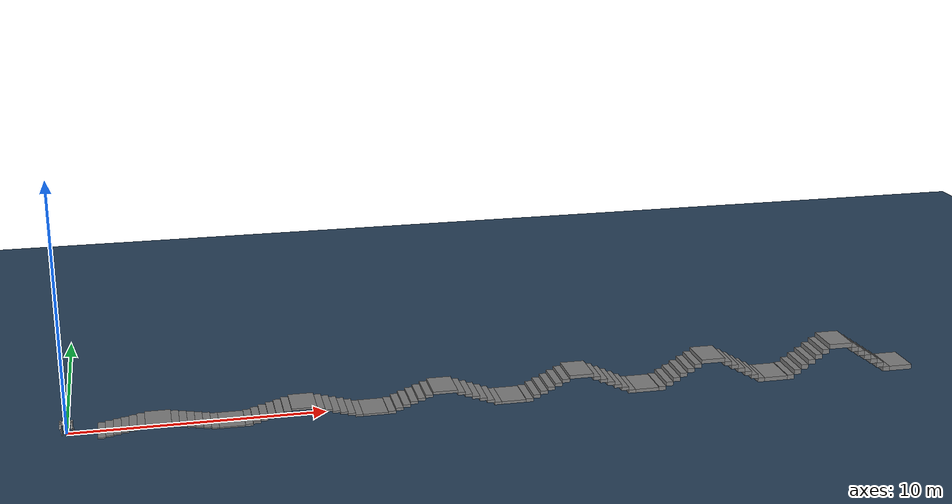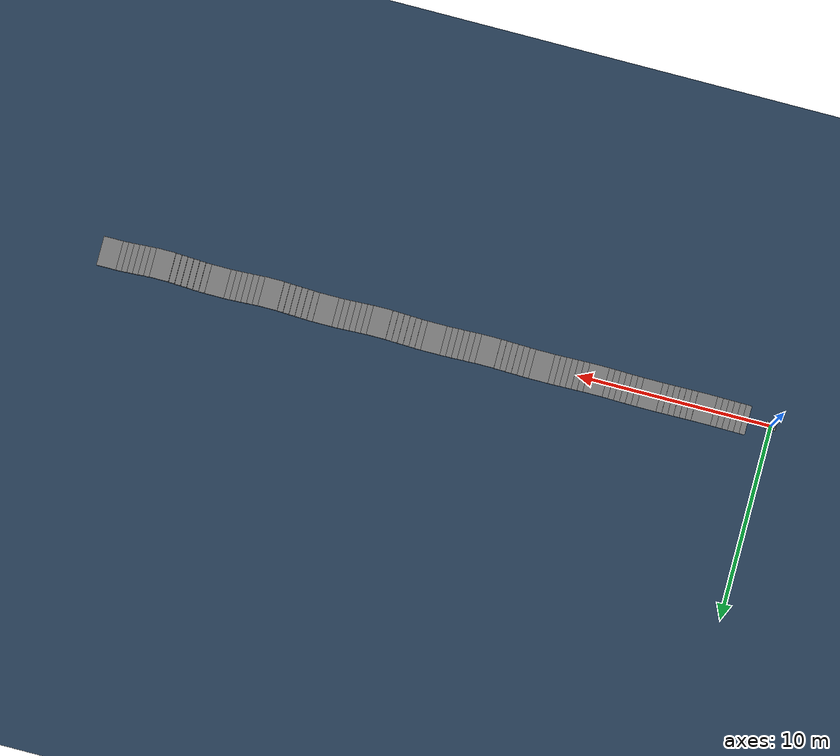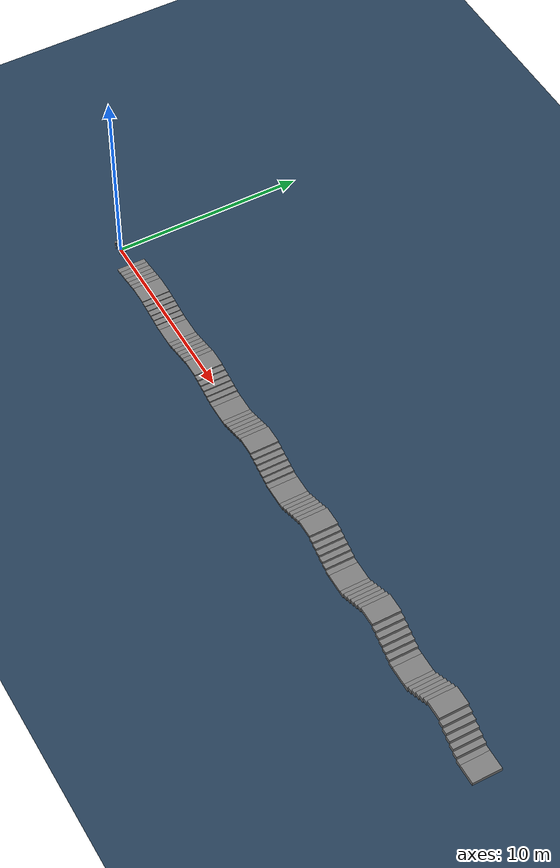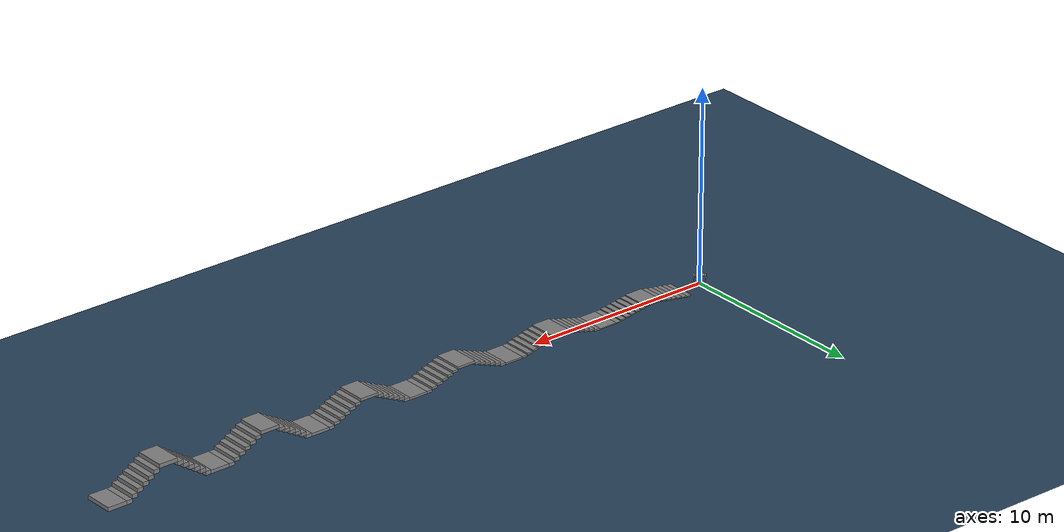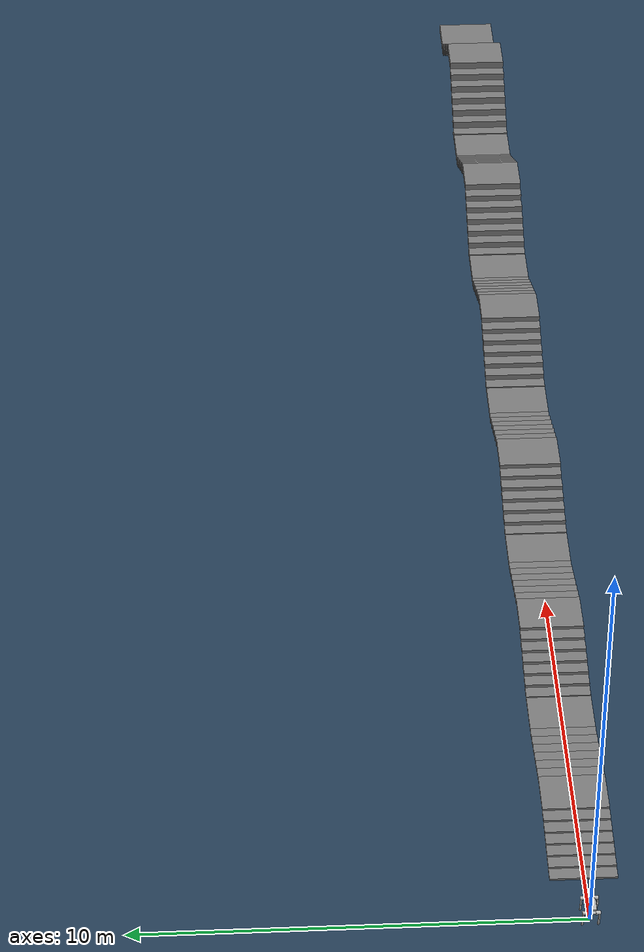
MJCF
<mujoco model="z2 scene">
  <include file="z2.xml"/>

  <statistic center="0 0 0.1" extent="0.8" />

  <default>
    <geom friction="2.0 0.05 0.001" />
  </default>
  <visual>
    <headlight diffuse="0.6 0.6 0.6" ambient="0.3 0.3 0.3" specular="0 0 0" />
    <rgba haze="0.15 0.25 0.35 1" />
    <global azimuth="-130" elevation="-20" />
  </visual>

  <asset>
    <texture type="skybox" builtin="gradient" rgb1="0.3 0.5 0.7" rgb2="0 0 0" width="512" height="3072" />
    <texture type="2d" name="groundplane" builtin="checker" mark="edge" rgb1="0.2 0.3 0.4" rgb2="0.1 0.2 0.3" markrgb="0.8 0.8 0.8" width="300" height="300" />
    <material name="groundplane" texture="groundplane" texuniform="true" texrepeat="5 5" reflectance="0.2" />
  </asset>

  <worldbody>
    <light pos="0 0 1.5" dir="0 0 -1" directional="true" />
    <geom name="floor" size="0 0 0.05" type="plane" material="groundplane" />

    <geom pos="1.3 0.0 0.025" type="box" size="0.15 0.75 0.025" quat="1.0 0.0 0.0 0.0" />
    <geom pos="1.6 0.0 0.07500000000000001" type="box" size="0.15 0.75 0.025" quat="1.0 0.0 0.0 0.0" />
    <geom pos="1.9 0.0 0.125" type="box" size="0.15 0.75 0.025" quat="1.0 0.0 0.0 0.0" />
    <geom pos="2.2 0.0 0.17500000000000002" type="box" size="0.15 0.75 0.025" quat="1.0 0.0 0.0 0.0" />
    <geom pos="2.5 0.0 0.225" type="box" size="0.15 0.75 0.025" quat="1.0 0.0 0.0 0.0" />
    <geom pos="2.8 0.0 0.275" type="box" size="0.15 0.75 0.025" quat="1.0 0.0 0.0 0.0" />
    <geom pos="3.4499999999999997 0.0 0.32500000000000007" type="box" size="0.5 0.75 0.025" quat="1.0 0.0 0.0 0.0" />
    <geom pos="4.1 0.0 0.275" type="box" size="0.15 0.75 0.025" quat="1.0 0.0 0.0 0.0" />
    <geom pos="4.3999999999999995 0.0 0.22500000000000003" type="box" size="0.15 0.75 0.025" quat="1.0 0.0 0.0 0.0" />
    <geom pos="4.699999999999999 0.0 0.17500000000000002" type="box" size="0.15 0.75 0.025" quat="1.0 0.0 0.0 0.0" />
    <geom pos="5.0 0.0 0.125" type="box" size="0.15 0.75 0.025" quat="1.0 0.0 0.0 0.0" />
    <geom pos="5.3 0.0 0.07500000000000001" type="box" size="0.15 0.75 0.025" quat="1.0 0.0 0.0 0.0" />
    <geom pos="5.6 0.0 0.025000000000000022" type="box" size="0.15 0.75 0.025" quat="1.0 0.0 0.0 0.0" />
    <geom pos="6.25 0.0 0.025" type="box" size="0.5 0.75 0.025" quat="1.0 0.0 0.0 0.0" />
    <geom pos="6.898999999999999 0.0 0.04" type="box" size="0.15 0.75 0.04" quat="1.0 0.0 0.0 0.0" />
    <geom pos="7.198999999999999 0.0 0.12" type="box" size="0.15 0.75 0.04" quat="1.0 0.0 0.0 0.0" />
    <geom pos="7.498999999999999 0.0 0.2" type="box" size="0.15 0.75 0.04" quat="1.0 0.0 0.0 0.0" />
    <geom pos="7.7989999999999995 0.0 0.28" type="box" size="0.15 0.75 0.04" quat="1.0 0.0 0.0 0.0" />
    <geom pos="8.099 0.0 0.36" type="box" size="0.15 0.75 0.04" quat="1.0 0.0 0.0 0.0" />
    <geom pos="8.399 0.0 0.44" type="box" size="0.15 0.75 0.04" quat="1.0 0.0 0.0 0.0" />
    <geom pos="9.049 0.0 0.52" type="box" size="0.5 0.75 0.04" quat="1.0 0.0 0.0 0.0" />
    <geom pos="9.698999999999998 0.0 0.44" type="box" size="0.15 0.75 0.04" quat="1.0 0.0 0.0 0.0" />
    <geom pos="9.998999999999999 0.0 0.36" type="box" size="0.15 0.75 0.04" quat="1.0 0.0 0.0 0.0" />
    <geom pos="10.299 0.0 0.28" type="box" size="0.15 0.75 0.04" quat="1.0 0.0 0.0 0.0" />
    <geom pos="10.598999999999998 0.0 0.2" type="box" size="0.15 0.75 0.04" quat="1.0 0.0 0.0 0.0" />
    <geom pos="10.899 0.0 0.12" type="box" size="0.15 0.75 0.04" quat="1.0 0.0 0.0 0.0" />
    <geom pos="11.198999999999998 0.0 0.03999999999999998" type="box" size="0.15 0.75 0.04" quat="1.0 0.0 0.0 0.0" />
    <geom pos="11.849 0.0 0.04" type="box" size="0.5 0.75 0.04" quat="1.0 0.0 0.0 0.0" />
    <geom pos="12.498 0.0 0.055" type="box" size="0.15 0.75 0.055" quat="1.0 0.0 0.0 0.0" />
    <geom pos="12.797999999999998 0.0 0.165" type="box" size="0.15 0.75 0.055" quat="1.0 0.0 0.0 0.0" />
    <geom pos="13.097999999999999 0.0 0.275" type="box" size="0.15 0.75 0.055" quat="1.0 0.0 0.0 0.0" />
    <geom pos="13.397999999999998 0.0 0.385" type="box" size="0.15 0.75 0.055" quat="1.0 0.0 0.0 0.0" />
    <geom pos="13.697999999999999 0.0 0.495" type="box" size="0.15 0.75 0.055" quat="1.0 0.0 0.0 0.0" />
    <geom pos="13.997999999999998 0.0 0.605" type="box" size="0.15 0.75 0.055" quat="1.0 0.0 0.0 0.0" />
    <geom pos="14.647999999999998 0.0 0.7150000000000001" type="box" size="0.5 0.75 0.055" quat="1.0 0.0 0.0 0.0" />
    <geom pos="15.297999999999998 0.0 0.605" type="box" size="0.15 0.75 0.055" quat="1.0 0.0 0.0 0.0" />
    <geom pos="15.597999999999999 0.0 0.495" type="box" size="0.15 0.75 0.055" quat="1.0 0.0 0.0 0.0" />
    <geom pos="15.897999999999998 0.0 0.385" type="box" size="0.15 0.75 0.055" quat="1.0 0.0 0.0 0.0" />
    <geom pos="16.197999999999997 0.0 0.27499999999999997" type="box" size="0.15 0.75 0.055" quat="1.0 0.0 0.0 0.0" />
    <geom pos="16.497999999999998 0.0 0.16499999999999998" type="box" size="0.15 0.75 0.055" quat="1.0 0.0 0.0 0.0" />
    <geom pos="16.798 0.0 0.05499999999999994" type="box" size="0.15 0.75 0.055" quat="1.0 0.0 0.0 0.0" />
    <geom pos="17.448 0.0 0.055" type="box" size="0.5 0.75 0.055" quat="1.0 0.0 0.0 0.0" />
    <geom pos="18.096999999999998 0.0 0.07" type="box" size="0.15 0.75 0.07" quat="1.0 0.0 0.0 0.0" />
    <geom pos="18.397 0.0 0.21000000000000002" type="box" size="0.15 0.75 0.07" quat="1.0 0.0 0.0 0.0" />
    <geom pos="18.696999999999996 0.0 0.35000000000000003" type="box" size="0.15 0.75 0.07" quat="1.0 0.0 0.0 0.0" />
    <geom pos="18.996999999999996 0.0 0.49000000000000005" type="box" size="0.15 0.75 0.07" quat="1.0 0.0 0.0 0.0" />
    <geom pos="19.296999999999997 0.0 0.6300000000000001" type="box" size="0.15 0.75 0.07" quat="1.0 0.0 0.0 0.0" />
    <geom pos="19.596999999999998 0.0 0.77" type="box" size="0.15 0.75 0.07" quat="1.0 0.0 0.0 0.0" />
    <geom pos="20.246999999999996 0.0 0.9100000000000001" type="box" size="0.5 0.75 0.07" quat="1.0 0.0 0.0 0.0" />
    <geom pos="20.897 0.0 0.77" type="box" size="0.15 0.75 0.07" quat="1.0 0.0 0.0 0.0" />
    <geom pos="21.196999999999996 0.0 0.63" type="box" size="0.15 0.75 0.07" quat="1.0 0.0 0.0 0.0" />
    <geom pos="21.496999999999996 0.0 0.49" type="box" size="0.15 0.75 0.07" quat="1.0 0.0 0.0 0.0" />
    <geom pos="21.796999999999997 0.0 0.35" type="box" size="0.15 0.75 0.07" quat="1.0 0.0 0.0 0.0" />
    <geom pos="22.096999999999998 0.0 0.20999999999999996" type="box" size="0.15 0.75 0.07" quat="1.0 0.0 0.0 0.0" />
    <geom pos="22.397 0.0 0.06999999999999995" type="box" size="0.15 0.75 0.07" quat="1.0 0.0 0.0 0.0" />
    <geom pos="23.046999999999997 0.0 0.07" type="box" size="0.5 0.75 0.07" quat="1.0 0.0 0.0 0.0" />
    <geom pos="23.695999999999998 0.0 0.085" type="box" size="0.15 0.75 0.085" quat="1.0 0.0 0.0 0.0" />
    <geom pos="23.996 0.0 0.255" type="box" size="0.15 0.75 0.085" quat="1.0 0.0 0.0 0.0" />
    <geom pos="24.295999999999996 0.0 0.42500000000000004" type="box" size="0.15 0.75 0.085" quat="1.0 0.0 0.0 0.0" />
    <geom pos="24.595999999999997 0.0 0.5950000000000001" type="box" size="0.15 0.75 0.085" quat="1.0 0.0 0.0 0.0" />
    <geom pos="24.895999999999997 0.0 0.765" type="box" size="0.15 0.75 0.085" quat="1.0 0.0 0.0 0.0" />
    <geom pos="25.195999999999998 0.0 0.935" type="box" size="0.15 0.75 0.085" quat="1.0 0.0 0.0 0.0" />
    <geom pos="25.845999999999997 0.0 1.105" type="box" size="0.5 0.75 0.085" quat="1.0 0.0 0.0 0.0" />
    <geom pos="26.495999999999995 0.0 0.935" type="box" size="0.15 0.75 0.085" quat="1.0 0.0 0.0 0.0" />
    <geom pos="26.795999999999996 0.0 0.765" type="box" size="0.15 0.75 0.085" quat="1.0 0.0 0.0 0.0" />
    <geom pos="27.095999999999997 0.0 0.595" type="box" size="0.15 0.75 0.085" quat="1.0 0.0 0.0 0.0" />
    <geom pos="27.395999999999997 0.0 0.42500000000000004" type="box" size="0.15 0.75 0.085" quat="1.0 0.0 0.0 0.0" />
    <geom pos="27.695999999999998 0.0 0.255" type="box" size="0.15 0.75 0.085" quat="1.0 0.0 0.0 0.0" />
    <geom pos="27.995999999999995 0.0 0.08499999999999996" type="box" size="0.15 0.75 0.085" quat="1.0 0.0 0.0 0.0" />
    <geom pos="28.645999999999997 0.0 0.085" type="box" size="0.5 0.75 0.085" quat="1.0 0.0 0.0 0.0" />
    <geom pos="29.294999999999998 0.0 0.1" type="box" size="0.15 0.75 0.1" quat="1.0 0.0 0.0 0.0" />
    <geom pos="29.595 0.0 0.30000000000000004" type="box" size="0.15 0.75 0.1" quat="1.0 0.0 0.0 0.0" />
    <geom pos="29.894999999999996 0.0 0.5" type="box" size="0.15 0.75 0.1" quat="1.0 0.0 0.0 0.0" />
    <geom pos="30.194999999999997 0.0 0.7000000000000001" type="box" size="0.15 0.75 0.1" quat="1.0 0.0 0.0 0.0" />
    <geom pos="30.494999999999997 0.0 0.9" type="box" size="0.15 0.75 0.1" quat="1.0 0.0 0.0 0.0" />
    <geom pos="30.794999999999998 0.0 1.1" type="box" size="0.15 0.75 0.1" quat="1.0 0.0 0.0 0.0" />
    <geom pos="31.444999999999997 0.0 1.3000000000000003" type="box" size="0.5 0.75 0.1" quat="1.0 0.0 0.0 0.0" />
    <geom pos="32.095 0.0 1.1" type="box" size="0.15 0.75 0.1" quat="1.0 0.0 0.0 0.0" />
    <geom pos="32.394999999999996 0.0 0.9000000000000001" type="box" size="0.15 0.75 0.1" quat="1.0 0.0 0.0 0.0" />
    <geom pos="32.695 0.0 0.7000000000000001" type="box" size="0.15 0.75 0.1" quat="1.0 0.0 0.0 0.0" />
    <geom pos="32.995 0.0 0.5" type="box" size="0.15 0.75 0.1" quat="1.0 0.0 0.0 0.0" />
    <geom pos="33.294999999999995 0.0 0.30000000000000004" type="box" size="0.15 0.75 0.1" quat="1.0 0.0 0.0 0.0" />
    <geom pos="33.595 0.0 0.10000000000000009" type="box" size="0.15 0.75 0.1" quat="1.0 0.0 0.0 0.0" />
    <geom pos="34.245 0.0 0.1" type="box" size="0.5 0.75 0.1" quat="1.0 0.0 0.0 0.0" />
  </worldbody>
</mujoco>

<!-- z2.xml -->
<mujoco model="z2">
  <compiler angle="radian"/>
    <!-- 优化的仿真参数 -->
  <option timestep="0.005" iterations="50" solver="Newton" tolerance="1e-10"/>

  <!-- 默认参数设置 -->
  <default>
    <joint damping="0.1" frictionloss="0.01"/>
  </default>

  <!-- 资源 -->
  <asset>
    <texture name="grid" type="2d" builtin="checker" rgb1=".1 .2 .3" rgb2=".2 .3 .4" width="300" height="300"/>
    <material name="grid" texture="grid" texrepeat="8 8" reflectance=".2"/>
  </asset>
  <worldbody>
    <body name = "base" pos="0 0 0.45">
      <freejoint name="floating_base"/>
      <camera name="chase_cam" pos="-2 0 2" xyaxes="0 -1 0 1 0 1"/>
      <inertial pos="-0.000191 0.0000032 0.0006968" mass="5.58" diaginertia="0.037965 0.083111 0.107543"/>

    <geom size="0.171 0.1185 0.0434996" pos="-0.0002 0 0.0006991" type="box" rgba="0.749024 0.749024 0.749024 1"/>
    <body name="FL_hip" pos="0.16 0.075 0">
      <inertial pos="0.0503824 -0.0220598 -0.0002227" quat="0.613622 0.651852 0.303579 0.326185" mass="0.6" diaginertia="0.000667996 0.000641103 0.000488901"/>
      <joint name="FL_hip_joint" pos="0 0 0" axis="1 0 0" range="-0.5 0.5" actuatorfrcrange="-30 30"/>
      <geom size="0.0366 0.0334" pos="0.057684 -0.0226742 0.0010791" quat="0.707107 0.707107 0 0" type="cylinder" rgba="0.749024 0.749024 0.749024 1"/>
      <body name="FL_thigh" pos="0.055 0.0842 0">
        <inertial pos="-0.007049 0.002918 -0.050395" quat="0.991716 0.113446 0.0581557 -0.0157265" mass="0.955" diaginertia="0.0049174 0.00470044 0.000998163"/>
        <joint name="FL_thigh_joint" pos="0 0 0" axis="0 1 0" range="-0.3 3.2" actuatorfrcrange="-30 30"/>
        <geom size="0.0422 0.05025" pos="0 -0.012625 0" quat="0.707107 0.707107 0 0" type="cylinder" rgba="0.749024 0.749024 0.749024 1"/>
        <geom size="0.025 0.015 0.095" pos="-0.011032 0.0188 -0.077453" quat="0.997189 0 0.0749297 0" type="box" rgba="0.749024 0.749024 0.749024 1"/>
        <body name="FL_calf" pos="0 0.01475 -0.2">
          <inertial pos="0.030631 0.00010936 -0.106785" quat="0.710916 -0.0753843 -0.0782397 0.694834" mass="0.2" diaginertia="0.00139287 0.00137355 3.83019e-05"/>
          <joint name="FL_calf_joint" pos="0 0 0" axis="0 1 0" range="-2.4 -0.3" actuatorfrcrange="-30 30"/>
          <geom size="0.12015 0.02 0.015" pos="0.022557 -0.0008348 -0.072349" quat="0.784565 0 0.620047 0" type="box" rgba="0.749024 0.749024 0.749024 1"/>
          <geom size="0.026" pos="0.0450757 5e-05 -0.204592" rgba="0.749024 0.749024 0.749024 1"/>
        </body>
      </body>
    </body>
    <body name="FR_hip" pos="0.16 -0.075 0">
      <inertial pos="0.0506296 0.0221701 -0.000239" quat="0.326185 0.303579 0.651852 0.613622" mass="0.6" diaginertia="0.000667996 0.000641103 0.000488901"/>
      <joint name="FR_hip_joint" pos="0 0 0" axis="1 0 0" range="-0.5 0.5" actuatorfrcrange="-30 30"/>
      <geom size="0.0366 0.0334" pos="0.057684 0.0226742 0.0010791" quat="0.707107 0.707107 0 0" type="cylinder" rgba="0.749024 0.749024 0.749024 1"/>
      <body name="FR_thigh" pos="0.055 -0.084 0">
        <inertial pos="-0.007071 -0.003119 -0.050404" quat="0.991691 -0.113365 0.0582242 0.0175184" mass="0.955" diaginertia="0.00491621 0.00469942 0.000998366"/>
        <joint name="FR_thigh_joint" pos="0 0 0" axis="0 1 0" range="-0.3 3.2" actuatorfrcrange="-30 30"/>
        <geom size="0.0422 0.05025" pos="0 0.012625 0" quat="0.707107 0.707107 0 0" type="cylinder" rgba="0.749024 0.749024 0.749024 1"/>
        <geom size="0.025 0.015 0.095" pos="-0.011032 -0.0188 -0.077453" quat="0.997189 0 0.0749297 0" type="box" rgba="0.749024 0.749024 0.749024 1"/>
        <body name="FR_calf" pos="0 -0.01495 -0.2">
          <inertial pos="0.0331811 -0.00010945 -0.106021" quat="0.710958 -0.0847404 -0.0857223 0.692828" mass="0.2" diaginertia="0.00139287 0.00137417 3.86716e-05"/>
          <joint name="FR_calf_joint" pos="0 0 0" axis="0 1 0" range="-2.4 -0.3" actuatorfrcrange="-30 30"/>
          <geom size="0.12015 0.02 0.015" pos="0.022557 0.0008348 -0.072349" quat="0.784565 0 0.620047 0" type="box" rgba="0.749024 0.749024 0.749024 1"/>
          <geom size="0.026" pos="0.0499806 -5e-05 -0.203453" rgba="0.749024 0.749024 0.749024 1"/>
        </body>
      </body>
    </body>
    <body name="RL_hip" pos="-0.16 0.075 0.0006991">
      <inertial pos="-0.0506619 -0.0222818 -0.0002469" quat="0.303583 0.327127 0.613027 0.651939" mass="0.6" diaginertia="0.000667037 0.000641102 0.000489861"/>
      <joint name="RL_hip_joint" pos="0 0 0" axis="1 0 0" range="-0.5 0.5" actuatorfrcrange="-30 30"/>
      <geom size="0.0366 0.0334" pos="-0.057684 -0.0226742 0.0010791" quat="0.707107 0.707107 0 0" type="cylinder" rgba="0.749024 0.749024 0.749024 1"/>
      <body name="RL_thigh" pos="-0.0556459 0.084 -0.0002675">
        <inertial pos="-0.007049 0.003118 -0.050395" quat="0.991716 0.113446 0.0581557 -0.0157265" mass="0.955" diaginertia="0.0049174 0.00470044 0.000998163"/>
        <joint name="RL_thigh_joint" pos="0 0 0" axis="0 1 0" range="-0.3 3.2" actuatorfrcrange="-30 30"/>
        <geom size="0.0422 0.05025" pos="0 -0.012625 0" quat="0.707107 0.707107 0 0" type="cylinder" rgba="0.749024 0.749024 0.749024 1"/>
        <geom size="0.025 0.015 0.095" pos="-0.011032 0.0188 -0.077453" quat="0.997189 0 0.0749297 0" type="box" rgba="0.749024 0.749024 0.749024 1"/>
        <body name="RL_calf" pos="0 0.01495 -0.2">
          <inertial pos="0.030631 0.00010936 -0.106785" quat="0.710916 -0.0753843 -0.0782397 0.694834" mass="0.2" diaginertia="0.00139287 0.00137355 3.83019e-05"/>
          <joint name="RL_calf_joint" pos="0 0 0" axis="0 1 0" range="-2.4 -0.3" actuatorfrcrange="-30 30"/>
          <geom size="0.12015 0.02 0.015" pos="0.022557 -0.0008348 -0.072349" quat="0.784565 0 0.620047 0" type="box" rgba="0.749024 0.749024 0.749024 1"/>
          <geom size="0.026" pos="0.0450757 5e-05 -0.204592" rgba="0.749024 0.749024 0.749024 1"/>
        </body>
      </body>
    </body>
    <body name="RR_hip" pos="-0.16 -0.075 0">
      <inertial pos="-0.0506297 0.0221701 -0.0002391" quat="0.651852 0.613622 0.326185 0.303579" mass="0.6" diaginertia="0.000667996 0.000641103 0.000488901"/>
      <joint name="RR_hip_joint" pos="0 0 0" axis="1 0 0" range="-0.5 0.5" actuatorfrcrange="-30 30"/>
      <geom size="0.0366 0.0334" pos="-0.057684 0.0226742 0.0010791" quat="0.707107 0.707107 0 0" type="cylinder" rgba="0.749024 0.749024 0.749024 1"/>
      <body name="RR_thigh" pos="-0.055 -0.0842 0">
        <inertial pos="-0.006854 -0.003352 -0.049844" quat="0.992343 -0.108847 0.0563863 0.0150982" mass="0.955" diaginertia="0.00486431 0.00464503 0.000972667"/>
        <joint name="RR_thigh_joint" pos="0 0 0" axis="0 1 0" range="-0.3 3.2" actuatorfrcrange="-30 30"/>
        <geom size="0.0422 0.05025" pos="0 0.012625 0" quat="0.707107 0.707107 0 0" type="cylinder" rgba="0.749024 0.749024 0.749024 1"/>
        <geom size="0.025 0.015 0.095" pos="-0.011032 -0.0188 -0.077453" quat="0.997189 0 0.0749297 0" type="box" rgba="0.749024 0.749024 0.749024 1"/>
        <body name="RR_calf" pos="0 -0.01475 -0.2">
          <inertial pos="0.0331812 -0.00010941 -0.106021" quat="0.710959 -0.08474 -0.0857227 0.692826" mass="0.2" diaginertia="0.00139287 0.00137417 3.86716e-05"/>
          <joint name="RR_calf_joint" pos="0 0 0" axis="0 1 0" range="-2.4 -0.3" actuatorfrcrange="-30 30"/>
          <geom size="0.12015 0.02 0.015" pos="0.022557 0.0008348 -0.072349" quat="0.784565 0 0.620047 0" type="box" rgba="0.749024 0.749024 0.749024 1"/>
          <geom size="0.026" pos="0.0499806 -5e-05 -0.203453" rgba="0.749024 0.749024 0.749024 1"/>
        </body>
      </body>
    </body>
    </body>
  </worldbody>
    <!-- 电机驱动器 -->
  <actuator>
    <!-- 前左腿电机 -->
    <motor name="FL_hip_motor" joint="FL_hip_joint" gear="1"/>
    <motor name="FL_thigh_motor" joint="FL_thigh_joint" gear="1"/>
    <motor name="FL_calf_motor" joint="FL_calf_joint" gear="1"/>

    <!-- 后左腿电机 -->
    <motor name="RL_hip_motor" joint="RL_hip_joint" gear="1"/>
    <motor name="RL_thigh_motor" joint="RL_thigh_joint" gear="1"/>
    <motor name="RL_calf_motor" joint="RL_calf_joint" gear="1"/>

    <!-- 前右腿电机 -->
    <motor name="FR_hip_motor" joint="FR_hip_joint" gear="1"/>
    <motor name="FR_thigh_motor" joint="FR_thigh_joint" gear="1"/>
    <motor name="FR_calf_motor" joint="FR_calf_joint" gear="1"/>

    <!-- 后右腿电机 -->
    <motor name="RR_hip_motor" joint="RR_hip_joint" gear="1"/>
    <motor name="RR_thigh_motor" joint="RR_thigh_joint" gear="1"/>
    <motor name="RR_calf_motor" joint="RR_calf_joint" gear="1"/>
  </actuator>

</mujoco>
